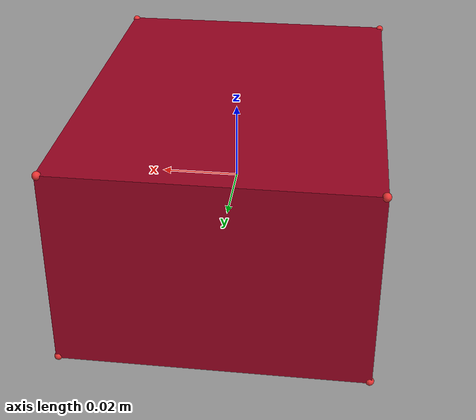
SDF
<?xml version="1.0"?>
<sdf version="1.7">
  <model name="foam_brick">
    <link name="base_link">
      <inertial>
        <pose>0 0 0.0 0 0 0 </pose>
        <mass>0.001</mass>
        <inertia>
          <ixx>1.17e-5</ixx>
          <ixy>0</ixy>
          <ixz>0</ixz>
          <iyy>1.9e-5</iyy>
          <iyz>0</iyz>
          <izz>1.9e-5</izz>
        </inertia>
      </inertial>
      <visual name="base_link">
        <pose>0 0 0.0 0 0 0</pose>
        <geometry>
          <box>
            <size>0.075 0.100 0.05</size>
          </box>
        </geometry>
        <material>
          <diffuse>0.61 0.01 0.13 1.0</diffuse>
        </material>
      </visual>
      <collision name="box_collision">
        <pose>0 0 0.0 0 0 0</pose>
        <geometry>
          <box>
            <size>0.074 0.099 0.0495</size>
          </box>
        </geometry>
      </collision>
      <collision name="point_collision1">
        <pose>0.037 0.0495 0.02475 0 0 0</pose>
        <geometry>
          <sphere>
            <radius>1e-7</radius>
          </sphere>
        </geometry>
      </collision>
      <collision name="point_collision2">
        <pose>0.037 -0.0495 0.02475 0 0 0</pose>
        <geometry>
          <sphere>
            <radius>1e-7</radius>
          </sphere>
        </geometry>
      </collision>
      <collision name="point_collision3">
        <pose>-0.037 0.0495 0.02475 0 0 0</pose>
        <geometry>
          <sphere>
            <radius>1e-7</radius>
          </sphere>
        </geometry>
      </collision>
      <collision name="point_collision4">
        <pose>-0.037 -0.0495 0.02475 0 0 0</pose>
        <geometry>
          <sphere>
            <radius>1e-7</radius>
          </sphere>
        </geometry>
      </collision>

      <collision name="point_collision5">
        <pose>0.037 0.0495 -0.02475 0 0 0</pose>
        <geometry>
          <sphere>
            <radius>1e-7</radius>
          </sphere>
        </geometry>
      </collision>
      <collision name="point_collision6">
        <pose>0.037 -0.0495 -0.02475 0 0 0</pose>
        <geometry>
          <sphere>
            <radius>1e-7</radius>
          </sphere>
        </geometry>
      </collision>
      <collision name="point_collision7">
        <pose>-0.037 0.0495 -0.02475 0 0 0</pose>
        <geometry>
          <sphere>
            <radius>1e-7</radius>
          </sphere>
        </geometry>
      </collision>
      <collision name="point_collision8">
        <pose>-0.037 -0.0495 -0.02475 0 0 0</pose>
        <geometry>
          <sphere>
            <radius>1e-7</radius>
          </sphere>
        </geometry>
      </collision>

      <!--
      Use the collision elements (with sphere radius exaggerated) as visual elements, too.
      -->
      <visual name="box_collision">
        <pose>0 0 0.0 0 0 0</pose>
        <geometry>
          <box>
            <size>0.074 0.099 0.0495</size>
          </box>
        </geometry>
        <material>
          <diffuse>.9 .9 .9 1.0</diffuse>
        </material>
      </visual>
      <visual name="point_collision1">
        <pose>0.037 0.0495 0.02475 0 0 0</pose>
        <geometry>
          <sphere>
            <radius>1e-3</radius>
          </sphere>
        </geometry>
        <material>
          <diffuse>.9 .2 .2 1.0</diffuse>
        </material>
      </visual>
      <visual name="point_collision2">
        <pose>0.037 -0.0495 0.02475 0 0 0</pose>
        <geometry>
          <sphere>
            <radius>1e-3</radius>
          </sphere>
        </geometry>
        <material>
          <diffuse>.9 .2 .2 1.0</diffuse>
        </material>
      </visual>
      <visual name="point_collision3">
        <pose>-0.037 0.0495 0.02475 0 0 0</pose>
        <geometry>
          <sphere>
            <radius>1e-3</radius>
          </sphere>
        </geometry>
        <material>
          <diffuse>.9 .2 .2 1.0</diffuse>
        </material>
      </visual>
      <visual name="point_collision4">
        <pose>-0.037 -0.0495 0.02475 0 0 0</pose>
        <geometry>
          <sphere>
            <radius>1e-3</radius>
          </sphere>
        </geometry>
        <material>
          <diffuse>.9 .2 .2 1.0</diffuse>
        </material>
      </visual>

      <visual name="point_collision5">
        <pose>0.037 0.0495 -0.02475 0 0 0</pose>
        <geometry>
          <sphere>
            <radius>1e-3</radius>
          </sphere>
        </geometry>
        <material>
          <diffuse>.9 .2 .2 1.0</diffuse>
        </material>
      </visual>
      <visual name="point_collision6">
        <pose>0.037 -0.0495 -0.02475 0 0 0</pose>
        <geometry>
          <sphere>
            <radius>1e-3</radius>
          </sphere>
        </geometry>
        <material>
          <diffuse>.9 .2 .2 1.0</diffuse>
        </material>
      </visual>
       <visual name="point_collision7">
        <pose>-0.037 0.0495 -0.02475 0 0 0</pose>
        <geometry>
          <sphere>
            <radius>1e-3</radius>
          </sphere>
        </geometry>
        <material>
          <diffuse>.9 .2 .2 1.0</diffuse>
        </material>
      </visual>
      <visual name="point_collision8">
        <pose>-0.037 -0.0495 -0.02475 0 0 0</pose>
        <geometry>
          <sphere>
            <radius>1e-3</radius>
          </sphere>
        </geometry>
        <material>
          <diffuse>.9 .2 .2 1.0</diffuse>
        </material>
      </visual>

    </link>
  </model>
</sdf>
